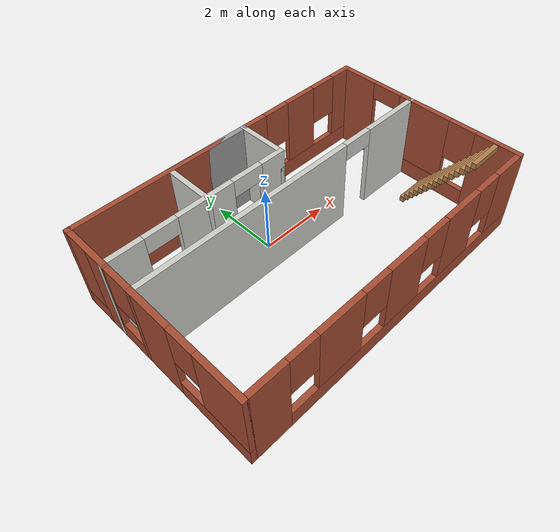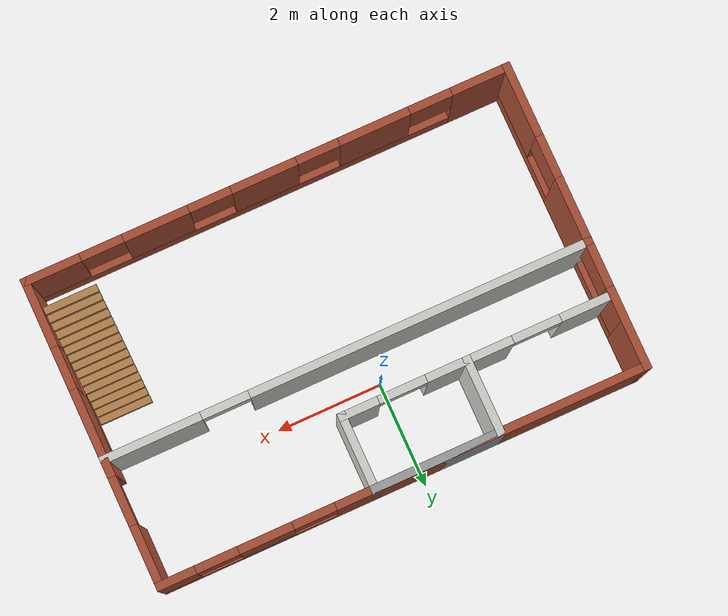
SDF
<?xml version='1.0'?>
<sdf version='1.6'>
  <model name='Building'>
    <pose frame=''>0.39 -1.08 0 0 -0 0</pose>
    <link name='Stairs_1'>
      <visual name='Stairs_1_Visual_0'>
        <pose frame=''>3.95843 -0.379973 0.083333 0 -0 0</pose>
        <geometry>
          <box>
            <size>1 0.133333 0.166667</size>
          </box>
        </geometry>
        <material>
          <script>
            <uri>file://media/materials/scripts/gazebo.material</uri>
            <name>Gazebo/Wood</name>
          </script>
          <ambient>1 1 1 1</ambient>
        </material>
        <meta>
          <layer>0</layer>
        </meta>
      </visual>
      <collision name='Stairs_1_Collision_0'>
        <geometry>
          <box>
            <size>1 0.133333 0.166667</size>
          </box>
        </geometry>
        <pose frame=''>3.95843 -0.379973 0.083333 0 -0 0</pose>
      </collision>
      <visual name='Stairs_1_Visual_1'>
        <pose frame=''>3.95843 -0.513306 0.25 0 -0 0</pose>
        <geometry>
          <box>
            <size>1 0.133333 0.166667</size>
          </box>
        </geometry>
        <material>
          <script>
            <uri>file://media/materials/scripts/gazebo.material</uri>
            <name>Gazebo/Wood</name>
          </script>
          <ambient>1 1 1 1</ambient>
        </material>
        <meta>
          <layer>0</layer>
        </meta>
      </visual>
      <collision name='Stairs_1_Collision_1'>
        <geometry>
          <box>
            <size>1 0.133333 0.166667</size>
          </box>
        </geometry>
        <pose frame=''>3.95843 -0.513306 0.25 0 -0 0</pose>
      </collision>
      <visual name='Stairs_1_Visual_2'>
        <pose frame=''>3.95843 -0.646639 0.416667 0 -0 0</pose>
        <geometry>
          <box>
            <size>1 0.133333 0.166667</size>
          </box>
        </geometry>
        <material>
          <script>
            <uri>file://media/materials/scripts/gazebo.material</uri>
            <name>Gazebo/Wood</name>
          </script>
          <ambient>1 1 1 1</ambient>
        </material>
        <meta>
          <layer>0</layer>
        </meta>
      </visual>
      <collision name='Stairs_1_Collision_2'>
        <geometry>
          <box>
            <size>1 0.133333 0.166667</size>
          </box>
        </geometry>
        <pose frame=''>3.95843 -0.646639 0.416667 0 -0 0</pose>
      </collision>
      <visual name='Stairs_1_Visual_3'>
        <pose frame=''>3.95843 -0.779973 0.583333 0 -0 0</pose>
        <geometry>
          <box>
            <size>1 0.133333 0.166667</size>
          </box>
        </geometry>
        <material>
          <script>
            <uri>file://media/materials/scripts/gazebo.material</uri>
            <name>Gazebo/Wood</name>
          </script>
          <ambient>1 1 1 1</ambient>
        </material>
        <meta>
          <layer>0</layer>
        </meta>
      </visual>
      <collision name='Stairs_1_Collision_3'>
        <geometry>
          <box>
            <size>1 0.133333 0.166667</size>
          </box>
        </geometry>
        <pose frame=''>3.95843 -0.779973 0.583333 0 -0 0</pose>
      </collision>
      <visual name='Stairs_1_Visual_4'>
        <pose frame=''>3.95843 -0.913306 0.75 0 -0 0</pose>
        <geometry>
          <box>
            <size>1 0.133333 0.166667</size>
          </box>
        </geometry>
        <material>
          <script>
            <uri>file://media/materials/scripts/gazebo.material</uri>
            <name>Gazebo/Wood</name>
          </script>
          <ambient>1 1 1 1</ambient>
        </material>
        <meta>
          <layer>0</layer>
        </meta>
      </visual>
      <collision name='Stairs_1_Collision_4'>
        <geometry>
          <box>
            <size>1 0.133333 0.166667</size>
          </box>
        </geometry>
        <pose frame=''>3.95843 -0.913306 0.75 0 -0 0</pose>
      </collision>
      <visual name='Stairs_1_Visual_5'>
        <pose frame=''>3.95843 -1.04664 0.916667 0 -0 0</pose>
        <geometry>
          <box>
            <size>1 0.133333 0.166667</size>
          </box>
        </geometry>
        <material>
          <script>
            <uri>file://media/materials/scripts/gazebo.material</uri>
            <name>Gazebo/Wood</name>
          </script>
          <ambient>1 1 1 1</ambient>
        </material>
        <meta>
          <layer>0</layer>
        </meta>
      </visual>
      <collision name='Stairs_1_Collision_5'>
        <geometry>
          <box>
            <size>1 0.133333 0.166667</size>
          </box>
        </geometry>
        <pose frame=''>3.95843 -1.04664 0.916667 0 -0 0</pose>
      </collision>
      <visual name='Stairs_1_Visual_6'>
        <pose frame=''>3.95843 -1.17997 1.08333 0 -0 0</pose>
        <geometry>
          <box>
            <size>1 0.133333 0.166667</size>
          </box>
        </geometry>
        <material>
          <script>
            <uri>file://media/materials/scripts/gazebo.material</uri>
            <name>Gazebo/Wood</name>
          </script>
          <ambient>1 1 1 1</ambient>
        </material>
        <meta>
          <layer>0</layer>
        </meta>
      </visual>
      <collision name='Stairs_1_Collision_6'>
        <geometry>
          <box>
            <size>1 0.133333 0.166667</size>
          </box>
        </geometry>
        <pose frame=''>3.95843 -1.17997 1.08333 0 -0 0</pose>
      </collision>
      <visual name='Stairs_1_Visual_7'>
        <pose frame=''>3.95843 -1.31331 1.25 0 -0 0</pose>
        <geometry>
          <box>
            <size>1 0.133333 0.166667</size>
          </box>
        </geometry>
        <material>
          <script>
            <uri>file://media/materials/scripts/gazebo.material</uri>
            <name>Gazebo/Wood</name>
          </script>
          <ambient>1 1 1 1</ambient>
        </material>
        <meta>
          <layer>0</layer>
        </meta>
      </visual>
      <collision name='Stairs_1_Collision_7'>
        <geometry>
          <box>
            <size>1 0.133333 0.166667</size>
          </box>
        </geometry>
        <pose frame=''>3.95843 -1.31331 1.25 0 -0 0</pose>
      </collision>
      <visual name='Stairs_1_Visual_8'>
        <pose frame=''>3.95843 -1.44664 1.41667 0 -0 0</pose>
        <geometry>
          <box>
            <size>1 0.133333 0.166667</size>
          </box>
        </geometry>
        <material>
          <script>
            <uri>file://media/materials/scripts/gazebo.material</uri>
            <name>Gazebo/Wood</name>
          </script>
          <ambient>1 1 1 1</ambient>
        </material>
        <meta>
          <layer>0</layer>
        </meta>
      </visual>
      <collision name='Stairs_1_Collision_8'>
        <geometry>
          <box>
            <size>1 0.133333 0.166667</size>
          </box>
        </geometry>
        <pose frame=''>3.95843 -1.44664 1.41667 0 -0 0</pose>
      </collision>
      <visual name='Stairs_1_Visual_9'>
        <pose frame=''>3.95843 -1.57997 1.58333 0 -0 0</pose>
        <geometry>
          <box>
            <size>1 0.133333 0.166667</size>
          </box>
        </geometry>
        <material>
          <script>
            <uri>file://media/materials/scripts/gazebo.material</uri>
            <name>Gazebo/Wood</name>
          </script>
          <ambient>1 1 1 1</ambient>
        </material>
        <meta>
          <layer>0</layer>
        </meta>
      </visual>
      <collision name='Stairs_1_Collision_9'>
        <geometry>
          <box>
            <size>1 0.133333 0.166667</size>
          </box>
        </geometry>
        <pose frame=''>3.95843 -1.57997 1.58333 0 -0 0</pose>
      </collision>
      <visual name='Stairs_1_Visual_10'>
        <pose frame=''>3.95843 -1.71331 1.75 0 -0 0</pose>
        <geometry>
          <box>
            <size>1 0.133333 0.166667</size>
          </box>
        </geometry>
        <material>
          <script>
            <uri>file://media/materials/scripts/gazebo.material</uri>
            <name>Gazebo/Wood</name>
          </script>
          <ambient>1 1 1 1</ambient>
        </material>
        <meta>
          <layer>0</layer>
        </meta>
      </visual>
      <collision name='Stairs_1_Collision_10'>
        <geometry>
          <box>
            <size>1 0.133333 0.166667</size>
          </box>
        </geometry>
        <pose frame=''>3.95843 -1.71331 1.75 0 -0 0</pose>
      </collision>
      <visual name='Stairs_1_Visual_11'>
        <pose frame=''>3.95843 -1.84664 1.91667 0 -0 0</pose>
        <geometry>
          <box>
            <size>1 0.133333 0.166667</size>
          </box>
        </geometry>
        <material>
          <script>
            <uri>file://media/materials/scripts/gazebo.material</uri>
            <name>Gazebo/Wood</name>
          </script>
          <ambient>1 1 1 1</ambient>
        </material>
        <meta>
          <layer>0</layer>
        </meta>
      </visual>
      <collision name='Stairs_1_Collision_11'>
        <geometry>
          <box>
            <size>1 0.133333 0.166667</size>
          </box>
        </geometry>
        <pose frame=''>3.95843 -1.84664 1.91667 0 -0 0</pose>
      </collision>
      <visual name='Stairs_1_Visual_12'>
        <pose frame=''>3.95843 -1.97997 2.08333 0 -0 0</pose>
        <geometry>
          <box>
            <size>1 0.133333 0.166667</size>
          </box>
        </geometry>
        <material>
          <script>
            <uri>file://media/materials/scripts/gazebo.material</uri>
            <name>Gazebo/Wood</name>
          </script>
          <ambient>1 1 1 1</ambient>
        </material>
        <meta>
          <layer>0</layer>
        </meta>
      </visual>
      <collision name='Stairs_1_Collision_12'>
        <geometry>
          <box>
            <size>1 0.133333 0.166667</size>
          </box>
        </geometry>
        <pose frame=''>3.95843 -1.97997 2.08333 0 -0 0</pose>
      </collision>
      <visual name='Stairs_1_Visual_13'>
        <pose frame=''>3.95843 -2.11331 2.25 0 -0 0</pose>
        <geometry>
          <box>
            <size>1 0.133333 0.166667</size>
          </box>
        </geometry>
        <material>
          <script>
            <uri>file://media/materials/scripts/gazebo.material</uri>
            <name>Gazebo/Wood</name>
          </script>
          <ambient>1 1 1 1</ambient>
        </material>
        <meta>
          <layer>0</layer>
        </meta>
      </visual>
      <collision name='Stairs_1_Collision_13'>
        <geometry>
          <box>
            <size>1 0.133333 0.166667</size>
          </box>
        </geometry>
        <pose frame=''>3.95843 -2.11331 2.25 0 -0 0</pose>
      </collision>
      <visual name='Stairs_1_Visual_14'>
        <pose frame=''>3.95843 -2.24664 2.41667 0 -0 0</pose>
        <geometry>
          <box>
            <size>1 0.133333 0.166667</size>
          </box>
        </geometry>
        <material>
          <script>
            <uri>file://media/materials/scripts/gazebo.material</uri>
            <name>Gazebo/Wood</name>
          </script>
          <ambient>1 1 1 1</ambient>
        </material>
        <meta>
          <layer>0</layer>
        </meta>
      </visual>
      <collision name='Stairs_1_Collision_14'>
        <geometry>
          <box>
            <size>1 0.133333 0.166667</size>
          </box>
        </geometry>
        <pose frame=''>3.95843 -2.24664 2.41667 0 -0 0</pose>
      </collision>
    </link>
    <link name='Wall_0'>
      <pose frame=''>-4.55 -1.175 0 0 0 -1.5708</pose>
      <visual name='Wall_0_Visual_0'>
        <pose frame=''>-1.09777 0 1.25 0 -0 0</pose>
        <geometry>
          <box>
            <size>1.30446 0.15 2.5</size>
          </box>
        </geometry>
        <material>
          <script>
            <uri>file://media/materials/scripts/gazebo.material</uri>
            <name>Gazebo/Bricks</name>
          </script>
          <ambient>1 1 1 1</ambient>
        </material>
        <meta>
          <layer>0</layer>
        </meta>
      </visual>
      <collision name='Wall_0_Collision_0'>
        <geometry>
          <box>
            <size>1.30446 0.15 2.5</size>
          </box>
        </geometry>
        <pose frame=''>-1.09777 0 1.25 0 -0 0</pose>
      </collision>
      <visual name='Wall_0_Visual_1'>
        <pose frame=''>0.652232 0 0.25 0 -0 0</pose>
        <geometry>
          <box>
            <size>2.19554 0.15 0.5</size>
          </box>
        </geometry>
        <material>
          <script>
            <uri>file://media/materials/scripts/gazebo.material</uri>
            <name>Gazebo/Bricks</name>
          </script>
          <ambient>1 1 1 1</ambient>
        </material>
        <meta>
          <layer>0</layer>
        </meta>
      </visual>
      <collision name='Wall_0_Collision_1'>
        <geometry>
          <box>
            <size>2.19554 0.15 0.5</size>
          </box>
        </geometry>
        <pose frame=''>0.652232 0 0.25 0 -0 0</pose>
      </collision>
      <visual name='Wall_0_Visual_2'>
        <pose frame=''>1.05223 0 1.5 0 -0 0</pose>
        <geometry>
          <box>
            <size>1.39554 0.15 2</size>
          </box>
        </geometry>
        <material>
          <script>
            <uri>file://media/materials/scripts/gazebo.material</uri>
            <name>Gazebo/Bricks</name>
          </script>
          <ambient>1 1 1 1</ambient>
        </material>
        <meta>
          <layer>0</layer>
        </meta>
      </visual>
      <collision name='Wall_0_Collision_2'>
        <geometry>
          <box>
            <size>1.39554 0.15 2</size>
          </box>
        </geometry>
        <pose frame=''>1.05223 0 1.5 0 -0 0</pose>
      </collision>
      <visual name='Wall_0_Visual_3'>
        <pose frame=''>-0.045536 0 1.9 0 -0 0</pose>
        <geometry>
          <box>
            <size>0.8 0.15 1.2</size>
          </box>
        </geometry>
        <material>
          <script>
            <uri>file://media/materials/scripts/gazebo.material</uri>
            <name>Gazebo/Bricks</name>
          </script>
          <ambient>1 1 1 1</ambient>
        </material>
        <meta>
          <layer>0</layer>
        </meta>
      </visual>
      <collision name='Wall_0_Collision_3'>
        <geometry>
          <box>
            <size>0.8 0.15 1.2</size>
          </box>
        </geometry>
        <pose frame=''>-0.045536 0 1.9 0 -0 0</pose>
      </collision>
    </link>
    <link name='Wall_1'>
      <pose frame=''>0 -2.85 0 0 -0 0</pose>
      <visual name='Wall_1_Visual_0'>
        <pose frame=''>-4.05675 0 1.25 0 -0 0</pose>
        <geometry>
          <box>
            <size>1.1365 0.15 2.5</size>
          </box>
        </geometry>
        <material>
          <script>
            <uri>file://media/materials/scripts/gazebo.material</uri>
            <name>Gazebo/Bricks</name>
          </script>
          <ambient>1 1 1 1</ambient>
        </material>
        <meta>
          <layer>0</layer>
        </meta>
      </visual>
      <collision name='Wall_1_Collision_0'>
        <geometry>
          <box>
            <size>1.1365 0.15 2.5</size>
          </box>
        </geometry>
        <pose frame=''>-4.05675 0 1.25 0 -0 0</pose>
      </collision>
      <visual name='Wall_1_Visual_1'>
        <pose frame=''>0.568248 0 0.25 0 -0 0</pose>
        <geometry>
          <box>
            <size>8.1135 0.15 0.5</size>
          </box>
        </geometry>
        <material>
          <script>
            <uri>file://media/materials/scripts/gazebo.material</uri>
            <name>Gazebo/Bricks</name>
          </script>
          <ambient>1 1 1 1</ambient>
        </material>
        <meta>
          <layer>0</layer>
        </meta>
      </visual>
      <collision name='Wall_1_Collision_1'>
        <geometry>
          <box>
            <size>8.1135 0.15 0.5</size>
          </box>
        </geometry>
        <pose frame=''>0.568248 0 0.25 0 -0 0</pose>
      </collision>
      <visual name='Wall_1_Visual_2'>
        <pose frame=''>-2.01945 0 1.5 0 -0 0</pose>
        <geometry>
          <box>
            <size>1.3381 0.15 2</size>
          </box>
        </geometry>
        <material>
          <script>
            <uri>file://media/materials/scripts/gazebo.material</uri>
            <name>Gazebo/Bricks</name>
          </script>
          <ambient>1 1 1 1</ambient>
        </material>
        <meta>
          <layer>0</layer>
        </meta>
      </visual>
      <collision name='Wall_1_Collision_2'>
        <geometry>
          <box>
            <size>1.3381 0.15 2</size>
          </box>
        </geometry>
        <pose frame=''>-2.01945 0 1.5 0 -0 0</pose>
      </collision>
      <visual name='Wall_1_Visual_3'>
        <pose frame=''>0.067744 0 1.5 0 -0 0</pose>
        <geometry>
          <box>
            <size>1.23629 0.15 2</size>
          </box>
        </geometry>
        <material>
          <script>
            <uri>file://media/materials/scripts/gazebo.material</uri>
            <name>Gazebo/Bricks</name>
          </script>
          <ambient>1 1 1 1</ambient>
        </material>
        <meta>
          <layer>0</layer>
        </meta>
      </visual>
      <collision name='Wall_1_Collision_3'>
        <geometry>
          <box>
            <size>1.23629 0.15 2</size>
          </box>
        </geometry>
        <pose frame=''>0.067744 0 1.5 0 -0 0</pose>
      </collision>
      <visual name='Wall_1_Visual_4'>
        <pose frame=''>2.10403 0 1.5 0 -0 0</pose>
        <geometry>
          <box>
            <size>1.23629 0.15 2</size>
          </box>
        </geometry>
        <material>
          <script>
            <uri>file://media/materials/scripts/gazebo.material</uri>
            <name>Gazebo/Bricks</name>
          </script>
          <ambient>1 1 1 1</ambient>
        </material>
        <meta>
          <layer>0</layer>
        </meta>
      </visual>
      <collision name='Wall_1_Collision_4'>
        <geometry>
          <box>
            <size>1.23629 0.15 2</size>
          </box>
        </geometry>
        <pose frame=''>2.10403 0 1.5 0 -0 0</pose>
      </collision>
      <visual name='Wall_1_Visual_5'>
        <pose frame=''>4.07359 0 1.5 0 -0 0</pose>
        <geometry>
          <box>
            <size>1.10282 0.15 2</size>
          </box>
        </geometry>
        <material>
          <script>
            <uri>file://media/materials/scripts/gazebo.material</uri>
            <name>Gazebo/Bricks</name>
          </script>
          <ambient>1 1 1 1</ambient>
        </material>
        <meta>
          <layer>0</layer>
        </meta>
      </visual>
      <collision name='Wall_1_Collision_5'>
        <geometry>
          <box>
            <size>1.10282 0.15 2</size>
          </box>
        </geometry>
        <pose frame=''>4.07359 0 1.5 0 -0 0</pose>
      </collision>
      <visual name='Wall_1_Visual_6'>
        <pose frame=''>-3.0885 0 1.9 0 -0 0</pose>
        <geometry>
          <box>
            <size>0.8 0.15 1.2</size>
          </box>
        </geometry>
        <material>
          <script>
            <uri>file://media/materials/scripts/gazebo.material</uri>
            <name>Gazebo/Bricks</name>
          </script>
          <ambient>1 1 1 1</ambient>
        </material>
        <meta>
          <layer>0</layer>
        </meta>
      </visual>
      <collision name='Wall_1_Collision_6'>
        <geometry>
          <box>
            <size>0.8 0.15 1.2</size>
          </box>
        </geometry>
        <pose frame=''>-3.0885 0 1.9 0 -0 0</pose>
      </collision>
      <visual name='Wall_1_Visual_7'>
        <pose frame=''>-0.950401 0 1.9 0 -0 0</pose>
        <geometry>
          <box>
            <size>0.8 0.15 1.2</size>
          </box>
        </geometry>
        <material>
          <script>
            <uri>file://media/materials/scripts/gazebo.material</uri>
            <name>Gazebo/Bricks</name>
          </script>
          <ambient>1 1 1 1</ambient>
        </material>
        <meta>
          <layer>0</layer>
        </meta>
      </visual>
      <collision name='Wall_1_Collision_7'>
        <geometry>
          <box>
            <size>0.8 0.15 1.2</size>
          </box>
        </geometry>
        <pose frame=''>-0.950401 0 1.9 0 -0 0</pose>
      </collision>
      <visual name='Wall_1_Visual_8'>
        <pose frame=''>1.08589 0 1.9 0 -0 0</pose>
        <geometry>
          <box>
            <size>0.8 0.15 1.2</size>
          </box>
        </geometry>
        <material>
          <script>
            <uri>file://media/materials/scripts/gazebo.material</uri>
            <name>Gazebo/Bricks</name>
          </script>
          <ambient>1 1 1 1</ambient>
        </material>
        <meta>
          <layer>0</layer>
        </meta>
      </visual>
      <collision name='Wall_1_Collision_8'>
        <geometry>
          <box>
            <size>0.8 0.15 1.2</size>
          </box>
        </geometry>
        <pose frame=''>1.08589 0 1.9 0 -0 0</pose>
      </collision>
      <visual name='Wall_1_Visual_9'>
        <pose frame=''>3.12218 0 1.9 0 -0 0</pose>
        <geometry>
          <box>
            <size>0.8 0.15 1.2</size>
          </box>
        </geometry>
        <material>
          <script>
            <uri>file://media/materials/scripts/gazebo.material</uri>
            <name>Gazebo/Bricks</name>
          </script>
          <ambient>1 1 1 1</ambient>
        </material>
        <meta>
          <layer>0</layer>
        </meta>
      </visual>
      <collision name='Wall_1_Collision_9'>
        <geometry>
          <box>
            <size>0.8 0.15 1.2</size>
          </box>
        </geometry>
        <pose frame=''>3.12218 0 1.9 0 -0 0</pose>
      </collision>
    </link>
    <link name='Wall_10'>
      <collision name='Wall_10_Collision'>
        <geometry>
          <box>
            <size>1.5 0.15 2.5</size>
          </box>
        </geometry>
        <pose frame=''>0 0 1.25 0 -0 0</pose>
      </collision>
      <visual name='Wall_10_Visual'>
        <pose frame=''>0 0 1.25 0 -0 0</pose>
        <geometry>
          <box>
            <size>1.5 0.15 2.5</size>
          </box>
        </geometry>
        <material>
          <script>
            <uri>file://media/materials/scripts/gazebo.material</uri>
            <name>Gazebo/CeilingTiled</name>
          </script>
          <ambient>0.435294 0.796078 0.67451 1</ambient>
        </material>
        <meta>
          <layer>0</layer>
        </meta>
      </visual>
      <pose frame=''>0.55 2.175 0 0 -0 1.5708</pose>
    </link>
    <link name='Wall_11'>
      <collision name='Wall_11_Collision'>
        <geometry>
          <box>
            <size>2.5 0.15 2.5</size>
          </box>
        </geometry>
        <pose frame=''>0 0 1.25 0 -0 0</pose>
      </collision>
      <visual name='Wall_11_Visual'>
        <pose frame=''>0 0 1.25 0 -0 0</pose>
        <geometry>
          <box>
            <size>2.5 0.15 2.5</size>
          </box>
        </geometry>
        <material>
          <script>
            <uri>file://media/materials/scripts/gazebo.material</uri>
            <name>Gazebo/Grey</name>
          </script>
          <ambient>1 1 1 1</ambient>
        </material>
        <meta>
          <layer>0</layer>
        </meta>
      </visual>
      <pose frame=''>-0.625 2.85 0 0 -0 3.14159</pose>
    </link>
    <link name='Wall_12'>
      <collision name='Wall_12_Collision'>
        <geometry>
          <box>
            <size>1.5 0.15 2.5</size>
          </box>
        </geometry>
        <pose frame=''>0 0 1.25 0 -0 0</pose>
      </collision>
      <visual name='Wall_12_Visual'>
        <pose frame=''>0 0 1.25 0 -0 0</pose>
        <geometry>
          <box>
            <size>1.5 0.15 2.5</size>
          </box>
        </geometry>
        <material>
          <script>
            <uri>file://media/materials/scripts/gazebo.material</uri>
            <name>Gazebo/CeilingTiled</name>
          </script>
          <ambient>0.435294 0.796078 0.67451 1</ambient>
        </material>
        <meta>
          <layer>0</layer>
        </meta>
      </visual>
      <pose frame=''>-1.8 2.175 0 0 0 -1.5708</pose>
    </link>
    <link name='Wall_2'>
      <pose frame=''>4.55 -1.175 0 0 -0 1.5708</pose>
      <visual name='Wall_2_Visual_0'>
        <pose frame=''>-1.09465 0 1.25 0 -0 0</pose>
        <geometry>
          <box>
            <size>1.31069 0.15 2.5</size>
          </box>
        </geometry>
        <material>
          <script>
            <uri>file://media/materials/scripts/gazebo.material</uri>
            <name>Gazebo/Bricks</name>
          </script>
          <ambient>1 1 1 1</ambient>
        </material>
        <meta>
          <layer>0</layer>
        </meta>
      </visual>
      <collision name='Wall_2_Collision_0'>
        <geometry>
          <box>
            <size>1.31069 0.15 2.5</size>
          </box>
        </geometry>
        <pose frame=''>-1.09465 0 1.25 0 -0 0</pose>
      </collision>
      <visual name='Wall_2_Visual_1'>
        <pose frame=''>0.655345 0 0.25 0 -0 0</pose>
        <geometry>
          <box>
            <size>2.18931 0.15 0.5</size>
          </box>
        </geometry>
        <material>
          <script>
            <uri>file://media/materials/scripts/gazebo.material</uri>
            <name>Gazebo/Bricks</name>
          </script>
          <ambient>1 1 1 1</ambient>
        </material>
        <meta>
          <layer>0</layer>
        </meta>
      </visual>
      <collision name='Wall_2_Collision_1'>
        <geometry>
          <box>
            <size>2.18931 0.15 0.5</size>
          </box>
        </geometry>
        <pose frame=''>0.655345 0 0.25 0 -0 0</pose>
      </collision>
      <visual name='Wall_2_Visual_2'>
        <pose frame=''>1.05534 0 1.5 0 -0 0</pose>
        <geometry>
          <box>
            <size>1.38931 0.15 2</size>
          </box>
        </geometry>
        <material>
          <script>
            <uri>file://media/materials/scripts/gazebo.material</uri>
            <name>Gazebo/Bricks</name>
          </script>
          <ambient>1 1 1 1</ambient>
        </material>
        <meta>
          <layer>0</layer>
        </meta>
      </visual>
      <collision name='Wall_2_Collision_2'>
        <geometry>
          <box>
            <size>1.38931 0.15 2</size>
          </box>
        </geometry>
        <pose frame=''>1.05534 0 1.5 0 -0 0</pose>
      </collision>
      <visual name='Wall_2_Visual_3'>
        <pose frame=''>-0.03931 0 1.9 0 -0 0</pose>
        <geometry>
          <box>
            <size>0.8 0.15 1.2</size>
          </box>
        </geometry>
        <material>
          <script>
            <uri>file://media/materials/scripts/gazebo.material</uri>
            <name>Gazebo/Bricks</name>
          </script>
          <ambient>1 1 1 1</ambient>
        </material>
        <meta>
          <layer>0</layer>
        </meta>
      </visual>
      <collision name='Wall_2_Collision_3'>
        <geometry>
          <box>
            <size>0.8 0.15 1.2</size>
          </box>
        </geometry>
        <pose frame=''>-0.03931 0 1.9 0 -0 0</pose>
      </collision>
    </link>
    <link name='Wall_3'>
      <pose frame=''>0 0.5 0 0 -0 3.14159</pose>
      <visual name='Wall_3_Visual_0'>
        <pose frame=''>-3.68285 0 1.25 0 -0 0</pose>
        <geometry>
          <box>
            <size>1.88431 0.15 2.5</size>
          </box>
        </geometry>
        <material>
          <script>
            <uri>file://media/materials/scripts/gazebo.material</uri>
            <name>Gazebo/CeilingTiled</name>
          </script>
          <ambient>0.435294 0.796078 0.67451 1</ambient>
        </material>
        <meta>
          <layer>0</layer>
        </meta>
      </visual>
      <collision name='Wall_3_Collision_0'>
        <geometry>
          <box>
            <size>1.88431 0.15 2.5</size>
          </box>
        </geometry>
        <pose frame=''>-3.68285 0 1.25 0 -0 0</pose>
      </collision>
      <visual name='Wall_3_Visual_1'>
        <pose frame=''>1.39215 0 1.25 0 -0 0</pose>
        <geometry>
          <box>
            <size>6.46569 0.15 2.5</size>
          </box>
        </geometry>
        <material>
          <script>
            <uri>file://media/materials/scripts/gazebo.material</uri>
            <name>Gazebo/CeilingTiled</name>
          </script>
          <ambient>0.435294 0.796078 0.67451 1</ambient>
        </material>
        <meta>
          <layer>0</layer>
        </meta>
      </visual>
      <collision name='Wall_3_Collision_1'>
        <geometry>
          <box>
            <size>6.46569 0.15 2.5</size>
          </box>
        </geometry>
        <pose frame=''>1.39215 0 1.25 0 -0 0</pose>
      </collision>
      <visual name='Wall_3_Visual_2'>
        <pose frame=''>-2.29069 0 2.25 0 -0 0</pose>
        <geometry>
          <box>
            <size>0.9 0.15 0.5</size>
          </box>
        </geometry>
        <material>
          <script>
            <uri>file://media/materials/scripts/gazebo.material</uri>
            <name>Gazebo/CeilingTiled</name>
          </script>
          <ambient>0.435294 0.796078 0.67451 1</ambient>
        </material>
        <meta>
          <layer>0</layer>
        </meta>
      </visual>
      <collision name='Wall_3_Collision_2'>
        <geometry>
          <box>
            <size>0.9 0.15 0.5</size>
          </box>
        </geometry>
        <pose frame=''>-2.29069 0 2.25 0 -0 0</pose>
      </collision>
    </link>
    <link name='Wall_4'>
      <pose frame=''>-4.55 1.675 0 0 -0 1.5708</pose>
      <visual name='Wall_4_Visual_0'>
        <pose frame=''>-1.18363 0 1.25 0 -0 0</pose>
        <geometry>
          <box>
            <size>0.132732 0.15 2.5</size>
          </box>
        </geometry>
        <material>
          <script>
            <uri>file://media/materials/scripts/gazebo.material</uri>
            <name>Gazebo/Bricks</name>
          </script>
          <ambient>1 1 1 1</ambient>
        </material>
        <meta>
          <layer>0</layer>
        </meta>
      </visual>
      <collision name='Wall_4_Collision_0'>
        <geometry>
          <box>
            <size>0.132732 0.15 2.5</size>
          </box>
        </geometry>
        <pose frame=''>-1.18363 0 1.25 0 -0 0</pose>
      </collision>
      <visual name='Wall_4_Visual_1'>
        <pose frame=''>0.066366 0 0.25 0 -0 0</pose>
        <geometry>
          <box>
            <size>2.36727 0.15 0.5</size>
          </box>
        </geometry>
        <material>
          <script>
            <uri>file://media/materials/scripts/gazebo.material</uri>
            <name>Gazebo/Bricks</name>
          </script>
          <ambient>1 1 1 1</ambient>
        </material>
        <meta>
          <layer>0</layer>
        </meta>
      </visual>
      <collision name='Wall_4_Collision_1'>
        <geometry>
          <box>
            <size>2.36727 0.15 0.5</size>
          </box>
        </geometry>
        <pose frame=''>0.066366 0 0.25 0 -0 0</pose>
      </collision>
      <visual name='Wall_4_Visual_2'>
        <pose frame=''>0.466366 0 1.5 0 -0 0</pose>
        <geometry>
          <box>
            <size>1.56727 0.15 2</size>
          </box>
        </geometry>
        <material>
          <script>
            <uri>file://media/materials/scripts/gazebo.material</uri>
            <name>Gazebo/Bricks</name>
          </script>
          <ambient>1 1 1 1</ambient>
        </material>
        <meta>
          <layer>0</layer>
        </meta>
      </visual>
      <collision name='Wall_4_Collision_2'>
        <geometry>
          <box>
            <size>1.56727 0.15 2</size>
          </box>
        </geometry>
        <pose frame=''>0.466366 0 1.5 0 -0 0</pose>
      </collision>
      <visual name='Wall_4_Visual_3'>
        <pose frame=''>-0.717268 0 1.9 0 -0 0</pose>
        <geometry>
          <box>
            <size>0.8 0.15 1.2</size>
          </box>
        </geometry>
        <material>
          <script>
            <uri>file://media/materials/scripts/gazebo.material</uri>
            <name>Gazebo/Bricks</name>
          </script>
          <ambient>1 1 1 1</ambient>
        </material>
        <meta>
          <layer>0</layer>
        </meta>
      </visual>
      <collision name='Wall_4_Collision_3'>
        <geometry>
          <box>
            <size>0.8 0.15 1.2</size>
          </box>
        </geometry>
        <pose frame=''>-0.717268 0 1.9 0 -0 0</pose>
      </collision>
    </link>
    <link name='Wall_5'>
      <pose frame=''>0 2.85 0 0 -0 0</pose>
      <visual name='Wall_5_Visual_0'>
        <pose frame=''>-1.6726 0 1.25 0 -0 0</pose>
        <geometry>
          <box>
            <size>5.90481 0.15 2.5</size>
          </box>
        </geometry>
        <material>
          <script>
            <uri>file://media/materials/scripts/gazebo.material</uri>
            <name>Gazebo/Bricks</name>
          </script>
          <ambient>1 1 1 1</ambient>
        </material>
        <meta>
          <layer>0</layer>
        </meta>
      </visual>
      <collision name='Wall_5_Collision_0'>
        <geometry>
          <box>
            <size>5.90481 0.15 2.5</size>
          </box>
        </geometry>
        <pose frame=''>-1.6726 0 1.25 0 -0 0</pose>
      </collision>
      <visual name='Wall_5_Visual_1'>
        <pose frame=''>2.9524 0 0.25 0 -0 0</pose>
        <geometry>
          <box>
            <size>3.34519 0.15 0.5</size>
          </box>
        </geometry>
        <material>
          <script>
            <uri>file://media/materials/scripts/gazebo.material</uri>
            <name>Gazebo/Bricks</name>
          </script>
          <ambient>1 1 1 1</ambient>
        </material>
        <meta>
          <layer>0</layer>
        </meta>
      </visual>
      <collision name='Wall_5_Collision_1'>
        <geometry>
          <box>
            <size>3.34519 0.15 0.5</size>
          </box>
        </geometry>
        <pose frame=''>2.9524 0 0.25 0 -0 0</pose>
      </collision>
      <visual name='Wall_5_Visual_2'>
        <pose frame=''>2.58765 0 1.5 0 -0 0</pose>
        <geometry>
          <box>
            <size>1.01569 0.15 2</size>
          </box>
        </geometry>
        <material>
          <script>
            <uri>file://media/materials/scripts/gazebo.material</uri>
            <name>Gazebo/Bricks</name>
          </script>
          <ambient>1 1 1 1</ambient>
        </material>
        <meta>
          <layer>0</layer>
        </meta>
      </visual>
      <collision name='Wall_5_Collision_2'>
        <geometry>
          <box>
            <size>1.01569 0.15 2</size>
          </box>
        </geometry>
        <pose frame=''>2.58765 0 1.5 0 -0 0</pose>
      </collision>
      <visual name='Wall_5_Visual_3'>
        <pose frame=''>4.26025 0 1.5 0 -0 0</pose>
        <geometry>
          <box>
            <size>0.729503 0.15 2</size>
          </box>
        </geometry>
        <material>
          <script>
            <uri>file://media/materials/scripts/gazebo.material</uri>
            <name>Gazebo/Bricks</name>
          </script>
          <ambient>1 1 1 1</ambient>
        </material>
        <meta>
          <layer>0</layer>
        </meta>
      </visual>
      <collision name='Wall_5_Collision_3'>
        <geometry>
          <box>
            <size>0.729503 0.15 2</size>
          </box>
        </geometry>
        <pose frame=''>4.26025 0 1.5 0 -0 0</pose>
      </collision>
      <visual name='Wall_5_Visual_4'>
        <pose frame=''>1.67981 0 1.9 0 -0 0</pose>
        <geometry>
          <box>
            <size>0.8 0.15 1.2</size>
          </box>
        </geometry>
        <material>
          <script>
            <uri>file://media/materials/scripts/gazebo.material</uri>
            <name>Gazebo/Bricks</name>
          </script>
          <ambient>1 1 1 1</ambient>
        </material>
        <meta>
          <layer>0</layer>
        </meta>
      </visual>
      <collision name='Wall_5_Collision_4'>
        <geometry>
          <box>
            <size>0.8 0.15 1.2</size>
          </box>
        </geometry>
        <pose frame=''>1.67981 0 1.9 0 -0 0</pose>
      </collision>
      <visual name='Wall_5_Visual_5'>
        <pose frame=''>3.4955 0 1.9 0 -0 0</pose>
        <geometry>
          <box>
            <size>0.8 0.15 1.2</size>
          </box>
        </geometry>
        <material>
          <script>
            <uri>file://media/materials/scripts/gazebo.material</uri>
            <name>Gazebo/Bricks</name>
          </script>
          <ambient>1 1 1 1</ambient>
        </material>
        <meta>
          <layer>0</layer>
        </meta>
      </visual>
      <collision name='Wall_5_Collision_5'>
        <geometry>
          <box>
            <size>0.8 0.15 1.2</size>
          </box>
        </geometry>
        <pose frame=''>3.4955 0 1.9 0 -0 0</pose>
      </collision>
    </link>
    <link name='Wall_6'>
      <pose frame=''>4.55 1.675 0 0 0 -1.5708</pose>
      <visual name='Wall_6_Visual_0'>
        <pose frame=''>-0.650369 0 1.25 0 -0 0</pose>
        <geometry>
          <box>
            <size>1.19926 0.15 2.5</size>
          </box>
        </geometry>
        <material>
          <script>
            <uri>file://media/materials/scripts/gazebo.material</uri>
            <name>Gazebo/Bricks</name>
          </script>
          <ambient>1 1 1 1</ambient>
        </material>
        <meta>
          <layer>0</layer>
        </meta>
      </visual>
      <collision name='Wall_6_Collision_0'>
        <geometry>
          <box>
            <size>1.19926 0.15 2.5</size>
          </box>
        </geometry>
        <pose frame=''>-0.650369 0 1.25 0 -0 0</pose>
      </collision>
      <visual name='Wall_6_Visual_1'>
        <pose frame=''>1.04963 0 1.25 0 -0 0</pose>
        <geometry>
          <box>
            <size>0.400738 0.15 2.5</size>
          </box>
        </geometry>
        <material>
          <script>
            <uri>file://media/materials/scripts/gazebo.material</uri>
            <name>Gazebo/Bricks</name>
          </script>
          <ambient>1 1 1 1</ambient>
        </material>
        <meta>
          <layer>0</layer>
        </meta>
      </visual>
      <collision name='Wall_6_Collision_1'>
        <geometry>
          <box>
            <size>0.400738 0.15 2.5</size>
          </box>
        </geometry>
        <pose frame=''>1.04963 0 1.25 0 -0 0</pose>
      </collision>
      <visual name='Wall_6_Visual_2'>
        <pose frame=''>0.399262 0 2.25 0 -0 0</pose>
        <geometry>
          <box>
            <size>0.9 0.15 0.5</size>
          </box>
        </geometry>
        <material>
          <script>
            <uri>file://media/materials/scripts/gazebo.material</uri>
            <name>Gazebo/Bricks</name>
          </script>
          <ambient>1 1 1 1</ambient>
        </material>
        <meta>
          <layer>0</layer>
        </meta>
      </visual>
      <collision name='Wall_6_Collision_2'>
        <geometry>
          <box>
            <size>0.9 0.15 0.5</size>
          </box>
        </geometry>
        <pose frame=''>0.399262 0 2.25 0 -0 0</pose>
      </collision>
    </link>
    <link name='Wall_8'>
      <collision name='Wall_8_Collision'>
        <geometry>
          <box>
            <size>1.5 0.15 2.5</size>
          </box>
        </geometry>
        <pose frame=''>0 0 1.25 0 -0 0</pose>
      </collision>
      <visual name='Wall_8_Visual'>
        <pose frame=''>0 0 1.25 0 -0 0</pose>
        <geometry>
          <box>
            <size>1.5 0.15 2.5</size>
          </box>
        </geometry>
        <material>
          <script>
            <uri>file://media/materials/scripts/gazebo.material</uri>
            <name>Gazebo/Bricks</name>
          </script>
          <ambient>1 1 1 1</ambient>
        </material>
        <meta>
          <layer>0</layer>
        </meta>
      </visual>
      <pose frame=''>-4.55 2.175 0 0 0 -1.5708</pose>
    </link>
    <link name='Wall_9'>
      <pose frame=''>-2 1.5 0 0 -0 0</pose>
      <visual name='Wall_9_Visual_0'>
        <pose frame=''>-2.09024 0 1.25 0 -0 0</pose>
        <geometry>
          <box>
            <size>1.06953 0.15 2.5</size>
          </box>
        </geometry>
        <material>
          <script>
            <uri>file://media/materials/scripts/gazebo.material</uri>
            <name>Gazebo/CeilingTiled</name>
          </script>
          <ambient>0.435294 0.796078 0.67451 1</ambient>
        </material>
        <meta>
          <layer>0</layer>
        </meta>
      </visual>
      <collision name='Wall_9_Collision_0'>
        <geometry>
          <box>
            <size>1.06953 0.15 2.5</size>
          </box>
        </geometry>
        <pose frame=''>-2.09024 0 1.25 0 -0 0</pose>
      </collision>
      <visual name='Wall_9_Visual_1'>
        <pose frame=''>0.158723 0 1.25 0 -0 0</pose>
        <geometry>
          <box>
            <size>1.62839 0.15 2.5</size>
          </box>
        </geometry>
        <material>
          <script>
            <uri>file://media/materials/scripts/gazebo.material</uri>
            <name>Gazebo/CeilingTiled</name>
          </script>
          <ambient>0.435294 0.796078 0.67451 1</ambient>
        </material>
        <meta>
          <layer>0</layer>
        </meta>
      </visual>
      <collision name='Wall_9_Collision_1'>
        <geometry>
          <box>
            <size>1.62839 0.15 2.5</size>
          </box>
        </geometry>
        <pose frame=''>0.158723 0 1.25 0 -0 0</pose>
      </collision>
      <visual name='Wall_9_Visual_2'>
        <pose frame=''>2.24896 0 1.25 0 -0 0</pose>
        <geometry>
          <box>
            <size>0.752081 0.15 2.5</size>
          </box>
        </geometry>
        <material>
          <script>
            <uri>file://media/materials/scripts/gazebo.material</uri>
            <name>Gazebo/CeilingTiled</name>
          </script>
          <ambient>0.435294 0.796078 0.67451 1</ambient>
        </material>
        <meta>
          <layer>0</layer>
        </meta>
      </visual>
      <collision name='Wall_9_Collision_2'>
        <geometry>
          <box>
            <size>0.752081 0.15 2.5</size>
          </box>
        </geometry>
        <pose frame=''>2.24896 0 1.25 0 -0 0</pose>
      </collision>
      <visual name='Wall_9_Visual_3'>
        <pose frame=''>-1.10547 0 2.25 0 -0 0</pose>
        <geometry>
          <box>
            <size>0.9 0.15 0.5</size>
          </box>
        </geometry>
        <material>
          <script>
            <uri>file://media/materials/scripts/gazebo.material</uri>
            <name>Gazebo/CeilingTiled</name>
          </script>
          <ambient>0.435294 0.796078 0.67451 1</ambient>
        </material>
        <meta>
          <layer>0</layer>
        </meta>
      </visual>
      <collision name='Wall_9_Collision_3'>
        <geometry>
          <box>
            <size>0.9 0.15 0.5</size>
          </box>
        </geometry>
        <pose frame=''>-1.10547 0 2.25 0 -0 0</pose>
      </collision>
      <visual name='Wall_9_Visual_4'>
        <pose frame=''>1.42292 0 2.25 0 -0 0</pose>
        <geometry>
          <box>
            <size>0.9 0.15 0.5</size>
          </box>
        </geometry>
        <material>
          <script>
            <uri>file://media/materials/scripts/gazebo.material</uri>
            <name>Gazebo/CeilingTiled</name>
          </script>
          <ambient>0.435294 0.796078 0.67451 1</ambient>
        </material>
        <meta>
          <layer>0</layer>
        </meta>
      </visual>
      <collision name='Wall_9_Collision_4'>
        <geometry>
          <box>
            <size>0.9 0.15 0.5</size>
          </box>
        </geometry>
        <pose frame=''>1.42292 0 2.25 0 -0 0</pose>
      </collision>
    </link>
    <static>1</static>
  </model>
</sdf>
